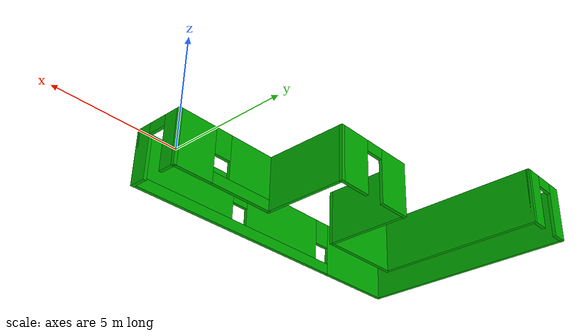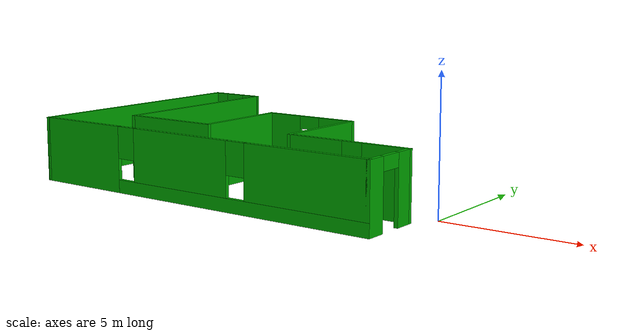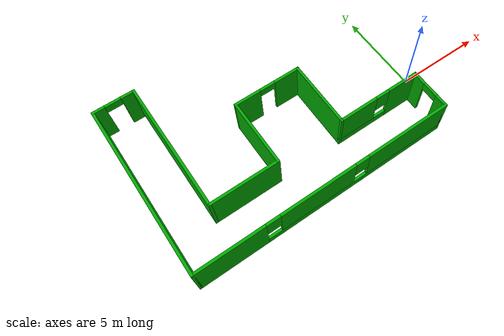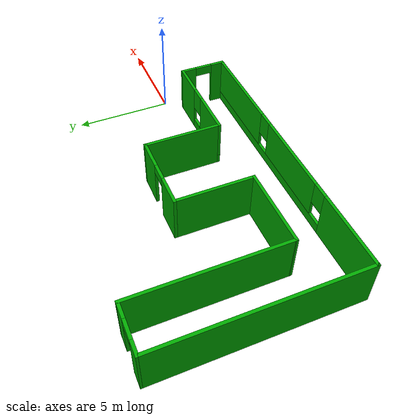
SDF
<?xml version='1.0'?>
<sdf version='1.7'>
  <model name='building'>
    <pose>-7.77875 1.73828 0 0 -0 0</pose>
    <link name='Wall_36'>
      <collision name='Wall_36_Collision'>
        <geometry>
          <box>
            <size>10 0.15 2.5</size>
          </box>
        </geometry>
        <pose>0 0 1.25 0 -0 0</pose>
      </collision>
      <visual name='Wall_36_Visual'>
        <pose>0 0 1.25 0 -0 0</pose>
        <geometry>
          <box>
            <size>10 0.15 2.5</size>
          </box>
        </geometry>
        <material>
          <script>
            <uri>file://media/materials/scripts/gazebo.material</uri>
            <name>Gazebo/Grey</name>
          </script>
          <ambient>0 0.666667 0 1</ambient>
        </material>
        <meta>
          <layer>0</layer>
        </meta>
      </visual>
      <pose>-7.70375 -0.04991 0 0 -0 -1.5708</pose>
    </link>
    <link name='Wall_37'>
      <pose>-0.278747 -4.97491 0 0 -0 0</pose>
      <visual name='Wall_37_Visual_0'>
        <pose>-5.5201 0 1.25 0 -0 0</pose>
        <geometry>
          <box>
            <size>3.9598 0.15 2.5</size>
          </box>
        </geometry>
        <material>
          <script>
            <uri>file://media/materials/scripts/gazebo.material</uri>
            <name>Gazebo/Grey</name>
          </script>
          <ambient>0 0.666667 0 1</ambient>
        </material>
        <meta>
          <layer>0</layer>
        </meta>
      </visual>
      <collision name='Wall_37_Collision_0'>
        <geometry>
          <box>
            <size>3.9598 0.15 2.5</size>
          </box>
        </geometry>
        <pose>-5.5201 0 1.25 0 -0 0</pose>
      </collision>
      <visual name='Wall_37_Visual_1'>
        <pose>1.9799 0 0.25 0 -0 0</pose>
        <geometry>
          <box>
            <size>11.0402 0.15 0.5</size>
          </box>
        </geometry>
        <material>
          <script>
            <uri>file://media/materials/scripts/gazebo.material</uri>
            <name>Gazebo/Grey</name>
          </script>
          <ambient>0 0.666667 0 1</ambient>
        </material>
        <meta>
          <layer>0</layer>
        </meta>
      </visual>
      <collision name='Wall_37_Collision_1'>
        <geometry>
          <box>
            <size>11.0402 0.15 0.5</size>
          </box>
        </geometry>
        <pose>1.9799 0 0.25 0 -0 0</pose>
      </collision>
      <visual name='Wall_37_Visual_2'>
        <pose>-0.534259 0 1.5 0 -0 0</pose>
        <geometry>
          <box>
            <size>4.41188 0.15 2</size>
          </box>
        </geometry>
        <material>
          <script>
            <uri>file://media/materials/scripts/gazebo.material</uri>
            <name>Gazebo/Grey</name>
          </script>
          <ambient>0 0.666667 0 1</ambient>
        </material>
        <meta>
          <layer>0</layer>
        </meta>
      </visual>
      <collision name='Wall_37_Collision_2'>
        <geometry>
          <box>
            <size>4.41188 0.15 2</size>
          </box>
        </geometry>
        <pose>-0.534259 0 1.5 0 -0 0</pose>
      </collision>
      <visual name='Wall_37_Visual_3'>
        <pose>4.98584 0 1.5 0 -0 0</pose>
        <geometry>
          <box>
            <size>5.02832 0.15 2</size>
          </box>
        </geometry>
        <material>
          <script>
            <uri>file://media/materials/scripts/gazebo.material</uri>
            <name>Gazebo/Grey</name>
          </script>
          <ambient>0 0.666667 0 1</ambient>
        </material>
        <meta>
          <layer>0</layer>
        </meta>
      </visual>
      <collision name='Wall_37_Collision_3'>
        <geometry>
          <box>
            <size>5.02832 0.15 2</size>
          </box>
        </geometry>
        <pose>4.98584 0 1.5 0 -0 0</pose>
      </collision>
      <visual name='Wall_37_Visual_4'>
        <pose>-3.1402 0 1.9 0 -0 0</pose>
        <geometry>
          <box>
            <size>0.8 0.15 1.2</size>
          </box>
        </geometry>
        <material>
          <script>
            <uri>file://media/materials/scripts/gazebo.material</uri>
            <name>Gazebo/Grey</name>
          </script>
          <ambient>0 0.666667 0 1</ambient>
        </material>
        <meta>
          <layer>0</layer>
        </meta>
      </visual>
      <collision name='Wall_37_Collision_4'>
        <geometry>
          <box>
            <size>0.8 0.15 1.2</size>
          </box>
        </geometry>
        <pose>-3.1402 0 1.9 0 -0 0</pose>
      </collision>
      <visual name='Wall_37_Visual_5'>
        <pose>2.07168 0 1.9 0 -0 0</pose>
        <geometry>
          <box>
            <size>0.8 0.15 1.2</size>
          </box>
        </geometry>
        <material>
          <script>
            <uri>file://media/materials/scripts/gazebo.material</uri>
            <name>Gazebo/Grey</name>
          </script>
          <ambient>0 0.666667 0 1</ambient>
        </material>
        <meta>
          <layer>0</layer>
        </meta>
      </visual>
      <collision name='Wall_37_Collision_5'>
        <geometry>
          <box>
            <size>0.8 0.15 1.2</size>
          </box>
        </geometry>
        <pose>2.07168 0 1.9 0 -0 0</pose>
      </collision>
    </link>
    <link name='Wall_38'>
      <pose>7.14625 -3.79991 0 0 -0 1.5708</pose>
      <visual name='Wall_38_Visual_0'>
        <pose>-0.864021 0 1.25 0 -0 0</pose>
        <geometry>
          <box>
            <size>0.771957 0.15 2.5</size>
          </box>
        </geometry>
        <material>
          <script>
            <uri>file://media/materials/scripts/gazebo.material</uri>
            <name>Gazebo/Grey</name>
          </script>
          <ambient>0 0.666667 0 1</ambient>
        </material>
        <meta>
          <layer>0</layer>
        </meta>
      </visual>
      <collision name='Wall_38_Collision_0'>
        <geometry>
          <box>
            <size>0.771957 0.15 2.5</size>
          </box>
        </geometry>
        <pose>-0.864021 0 1.25 0 -0 0</pose>
      </collision>
      <visual name='Wall_38_Visual_1'>
        <pose>0.835979 0 1.25 0 -0 0</pose>
        <geometry>
          <box>
            <size>0.828043 0.15 2.5</size>
          </box>
        </geometry>
        <material>
          <script>
            <uri>file://media/materials/scripts/gazebo.material</uri>
            <name>Gazebo/Grey</name>
          </script>
          <ambient>0 0.666667 0 1</ambient>
        </material>
        <meta>
          <layer>0</layer>
        </meta>
      </visual>
      <collision name='Wall_38_Collision_1'>
        <geometry>
          <box>
            <size>0.828043 0.15 2.5</size>
          </box>
        </geometry>
        <pose>0.835979 0 1.25 0 -0 0</pose>
      </collision>
      <visual name='Wall_38_Visual_2'>
        <pose>-0.028043 0 2.25 0 -0 0</pose>
        <geometry>
          <box>
            <size>0.9 0.15 0.5</size>
          </box>
        </geometry>
        <material>
          <script>
            <uri>file://media/materials/scripts/gazebo.material</uri>
            <name>Gazebo/Grey</name>
          </script>
          <ambient>0 0.666667 0 1</ambient>
        </material>
        <meta>
          <layer>0</layer>
        </meta>
      </visual>
      <collision name='Wall_38_Collision_2'>
        <geometry>
          <box>
            <size>0.9 0.15 0.5</size>
          </box>
        </geometry>
        <pose>-0.028043 0 2.25 0 -0 0</pose>
      </collision>
    </link>
    <link name='Wall_39'>
      <pose>4.72125 -2.62491 0 0 -0 3.14159</pose>
      <visual name='Wall_39_Visual_0'>
        <pose>-1.5645 0 1.25 0 -0 0</pose>
        <geometry>
          <box>
            <size>1.87101 0.15 2.5</size>
          </box>
        </geometry>
        <material>
          <script>
            <uri>file://media/materials/scripts/gazebo.material</uri>
            <name>Gazebo/Grey</name>
          </script>
          <ambient>0 0.666667 0 1</ambient>
        </material>
        <meta>
          <layer>0</layer>
        </meta>
      </visual>
      <collision name='Wall_39_Collision_0'>
        <geometry>
          <box>
            <size>1.87101 0.15 2.5</size>
          </box>
        </geometry>
        <pose>-1.5645 0 1.25 0 -0 0</pose>
      </collision>
      <visual name='Wall_39_Visual_1'>
        <pose>0.935503 0 0.25 0 -0 0</pose>
        <geometry>
          <box>
            <size>3.12899 0.15 0.5</size>
          </box>
        </geometry>
        <material>
          <script>
            <uri>file://media/materials/scripts/gazebo.material</uri>
            <name>Gazebo/Grey</name>
          </script>
          <ambient>0 0.666667 0 1</ambient>
        </material>
        <meta>
          <layer>0</layer>
        </meta>
      </visual>
      <collision name='Wall_39_Collision_1'>
        <geometry>
          <box>
            <size>3.12899 0.15 0.5</size>
          </box>
        </geometry>
        <pose>0.935503 0 0.25 0 -0 0</pose>
      </collision>
      <visual name='Wall_39_Visual_2'>
        <pose>1.3355 0 1.5 0 -0 0</pose>
        <geometry>
          <box>
            <size>2.32899 0.15 2</size>
          </box>
        </geometry>
        <material>
          <script>
            <uri>file://media/materials/scripts/gazebo.material</uri>
            <name>Gazebo/Grey</name>
          </script>
          <ambient>0 0.666667 0 1</ambient>
        </material>
        <meta>
          <layer>0</layer>
        </meta>
      </visual>
      <collision name='Wall_39_Collision_2'>
        <geometry>
          <box>
            <size>2.32899 0.15 2</size>
          </box>
        </geometry>
        <pose>1.3355 0 1.5 0 -0 0</pose>
      </collision>
      <visual name='Wall_39_Visual_3'>
        <pose>-0.228993 0 1.9 0 -0 0</pose>
        <geometry>
          <box>
            <size>0.8 0.15 1.2</size>
          </box>
        </geometry>
        <material>
          <script>
            <uri>file://media/materials/scripts/gazebo.material</uri>
            <name>Gazebo/Grey</name>
          </script>
          <ambient>0 0.666667 0 1</ambient>
        </material>
        <meta>
          <layer>0</layer>
        </meta>
      </visual>
      <collision name='Wall_39_Collision_3'>
        <geometry>
          <box>
            <size>0.8 0.15 1.2</size>
          </box>
        </geometry>
        <pose>-0.228993 0 1.9 0 -0 0</pose>
      </collision>
    </link>
    <link name='Wall_40'>
      <collision name='Wall_40_Collision'>
        <geometry>
          <box>
            <size>4 0.15 2.5</size>
          </box>
        </geometry>
        <pose>0 0 1.25 0 -0 0</pose>
      </collision>
      <visual name='Wall_40_Visual'>
        <pose>0 0 1.25 0 -0 0</pose>
        <geometry>
          <box>
            <size>4 0.15 2.5</size>
          </box>
        </geometry>
        <material>
          <script>
            <uri>file://media/materials/scripts/gazebo.material</uri>
            <name>Gazebo/Grey</name>
          </script>
          <ambient>0 0.666667 0 1</ambient>
        </material>
        <meta>
          <layer>0</layer>
        </meta>
      </visual>
      <pose>2.29625 -0.69991 0 0 -0 1.5708</pose>
    </link>
    <link name='Wall_41'>
      <pose>0.371253 1.22509 0 0 -0 3.14159</pose>
      <visual name='Wall_41_Visual_0'>
        <pose>-1.22438 0 1.25 0 -0 0</pose>
        <geometry>
          <box>
            <size>1.55124 0.15 2.5</size>
          </box>
        </geometry>
        <material>
          <script>
            <uri>file://media/materials/scripts/gazebo.material</uri>
            <name>Gazebo/Grey</name>
          </script>
          <ambient>0 0.666667 0 1</ambient>
        </material>
        <meta>
          <layer>0</layer>
        </meta>
      </visual>
      <collision name='Wall_41_Collision_0'>
        <geometry>
          <box>
            <size>1.55124 0.15 2.5</size>
          </box>
        </geometry>
        <pose>-1.22438 0 1.25 0 -0 0</pose>
      </collision>
      <visual name='Wall_41_Visual_1'>
        <pose>1.22562 0 1.25 0 -0 0</pose>
        <geometry>
          <box>
            <size>1.54876 0.15 2.5</size>
          </box>
        </geometry>
        <material>
          <script>
            <uri>file://media/materials/scripts/gazebo.material</uri>
            <name>Gazebo/Grey</name>
          </script>
          <ambient>0 0.666667 0 1</ambient>
        </material>
        <meta>
          <layer>0</layer>
        </meta>
      </visual>
      <collision name='Wall_41_Collision_1'>
        <geometry>
          <box>
            <size>1.54876 0.15 2.5</size>
          </box>
        </geometry>
        <pose>1.22562 0 1.25 0 -0 0</pose>
      </collision>
      <visual name='Wall_41_Visual_2'>
        <pose>0.001242 0 2.25 0 -0 0</pose>
        <geometry>
          <box>
            <size>0.9 0.15 0.5</size>
          </box>
        </geometry>
        <material>
          <script>
            <uri>file://media/materials/scripts/gazebo.material</uri>
            <name>Gazebo/Grey</name>
          </script>
          <ambient>0 0.666667 0 1</ambient>
        </material>
        <meta>
          <layer>0</layer>
        </meta>
      </visual>
      <collision name='Wall_41_Collision_2'>
        <geometry>
          <box>
            <size>0.9 0.15 0.5</size>
          </box>
        </geometry>
        <pose>0.001242 0 2.25 0 -0 0</pose>
      </collision>
    </link>
    <link name='Wall_42'>
      <collision name='Wall_42_Collision'>
        <geometry>
          <box>
            <size>4 0.15 2.5</size>
          </box>
        </geometry>
        <pose>0 0 1.25 0 -0 0</pose>
      </collision>
      <visual name='Wall_42_Visual'>
        <pose>0 0 1.25 0 -0 0</pose>
        <geometry>
          <box>
            <size>4 0.15 2.5</size>
          </box>
        </geometry>
        <material>
          <script>
            <uri>file://media/materials/scripts/gazebo.material</uri>
            <name>Gazebo/Grey</name>
          </script>
          <ambient>0 0.666667 0 1</ambient>
        </material>
        <meta>
          <layer>0</layer>
        </meta>
      </visual>
      <pose>-1.55375 -0.69991 0 0 -0 -1.5708</pose>
    </link>
    <link name='Wall_43'>
      <collision name='Wall_43_Collision'>
        <geometry>
          <box>
            <size>4 0.15 2.5</size>
          </box>
        </geometry>
        <pose>0 0 1.25 0 -0 0</pose>
      </collision>
      <visual name='Wall_43_Visual'>
        <pose>0 0 1.25 0 -0 0</pose>
        <geometry>
          <box>
            <size>4 0.15 2.5</size>
          </box>
        </geometry>
        <material>
          <script>
            <uri>file://media/materials/scripts/gazebo.material</uri>
            <name>Gazebo/Grey</name>
          </script>
          <ambient>0 0.666667 0 1</ambient>
        </material>
        <meta>
          <layer>0</layer>
        </meta>
      </visual>
      <pose>-3.47875 -2.62491 0 0 -0 3.14159</pose>
    </link>
    <link name='Wall_44'>
      <collision name='Wall_44_Collision'>
        <geometry>
          <box>
            <size>7.75 0.15 2.5</size>
          </box>
        </geometry>
        <pose>0 0 1.25 0 -0 0</pose>
      </collision>
      <visual name='Wall_44_Visual'>
        <pose>0 0 1.25 0 -0 0</pose>
        <geometry>
          <box>
            <size>7.75 0.15 2.5</size>
          </box>
        </geometry>
        <material>
          <script>
            <uri>file://media/materials/scripts/gazebo.material</uri>
            <name>Gazebo/Grey</name>
          </script>
          <ambient>0 0.666667 0 1</ambient>
        </material>
        <meta>
          <layer>0</layer>
        </meta>
      </visual>
      <pose>-5.4035 1.17491 0 0 -0 1.57073</pose>
    </link>
    <link name='Wall_45'>
      <pose>-6.55325 4.97472 0 0 -0 3.14159</pose>
      <visual name='Wall_45_Visual_0'>
        <pose>-0.813573 0 1.25 0 -0 0</pose>
        <geometry>
          <box>
            <size>0.822854 0.15 2.5</size>
          </box>
        </geometry>
        <material>
          <script>
            <uri>file://media/materials/scripts/gazebo.material</uri>
            <name>Gazebo/Grey</name>
          </script>
          <ambient>0 0.666667 0 1</ambient>
        </material>
        <meta>
          <layer>0</layer>
        </meta>
      </visual>
      <collision name='Wall_45_Collision_0'>
        <geometry>
          <box>
            <size>0.822854 0.15 2.5</size>
          </box>
        </geometry>
        <pose>-0.813573 0 1.25 0 -0 0</pose>
      </collision>
      <visual name='Wall_45_Visual_1'>
        <pose>0.861427 0 1.25 0 -0 0</pose>
        <geometry>
          <box>
            <size>0.727146 0.15 2.5</size>
          </box>
        </geometry>
        <material>
          <script>
            <uri>file://media/materials/scripts/gazebo.material</uri>
            <name>Gazebo/Grey</name>
          </script>
          <ambient>0 0.666667 0 1</ambient>
        </material>
        <meta>
          <layer>0</layer>
        </meta>
      </visual>
      <collision name='Wall_45_Collision_1'>
        <geometry>
          <box>
            <size>0.727146 0.15 2.5</size>
          </box>
        </geometry>
        <pose>0.861427 0 1.25 0 -0 0</pose>
      </collision>
      <visual name='Wall_45_Visual_2'>
        <pose>0.047854 0 2.25 0 -0 0</pose>
        <geometry>
          <box>
            <size>0.9 0.15 0.5</size>
          </box>
        </geometry>
        <material>
          <script>
            <uri>file://media/materials/scripts/gazebo.material</uri>
            <name>Gazebo/Grey</name>
          </script>
          <ambient>0 0.666667 0 1</ambient>
        </material>
        <meta>
          <layer>0</layer>
        </meta>
      </visual>
      <collision name='Wall_45_Collision_2'>
        <geometry>
          <box>
            <size>0.9 0.15 0.5</size>
          </box>
        </geometry>
        <pose>0.047854 0 2.25 0 -0 0</pose>
      </collision>
    </link>
    <static>1</static>
  </model>
</sdf>
